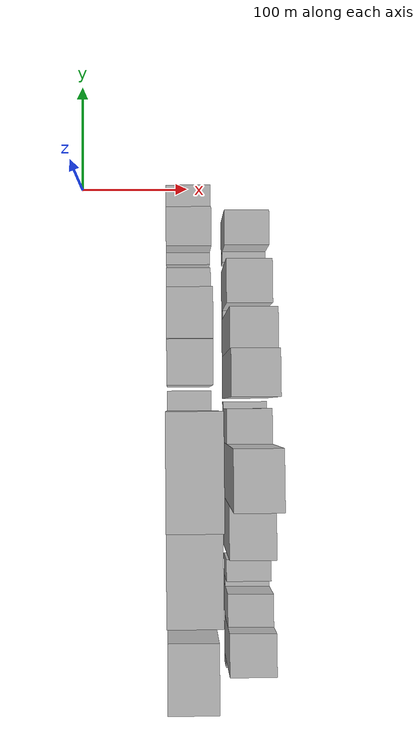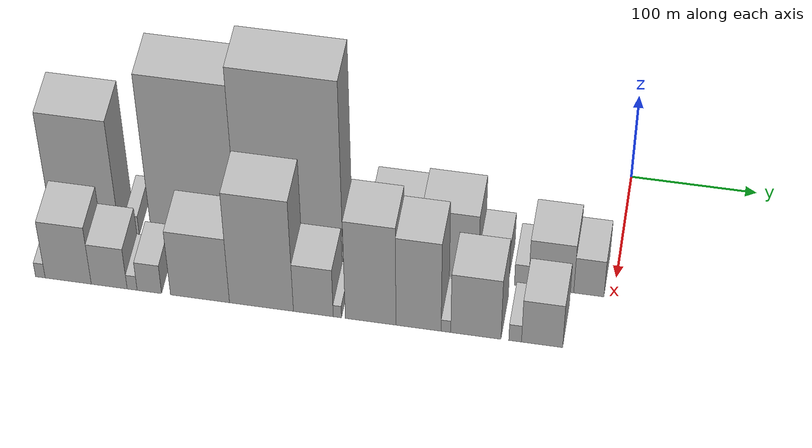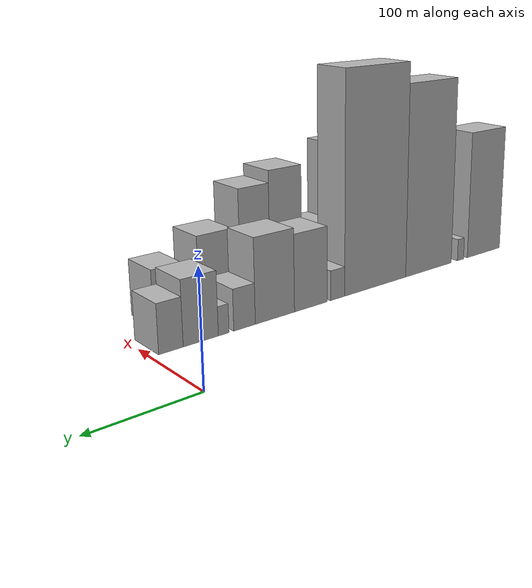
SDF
<sdf version="1.6">
 <world name="default">
  <model name="building_1">
   <static>1</static>
   <pose>100.0000 -416.7734 0 0.000000 0.000000 0.000000</pose>
   <link name="link">
    <pose>0 0 69.00 0 0 0</pose>
    <collision name="collision"><geometry><box><size>40.0000 54.4531 138.0000</size></box></geometry></collision>
    <visual name="visual">
     <cast_shadows>0</cast_shadows>
     <geometry><box><size>40.0000 54.4531 138.0000</size></box></geometry>
     <material>
      <script>
       <uri>model://HANNAS_wall/materials/scripts</uri>
       <uri>model://HANNAS_wall/materials/textures</uri>
       <name>vrc/HANNAS_wall</name>
      </script>
     </material>
    </visual>
   </link>
  </model>
  <model name="building_2">
   <static>1</static>
   <pose>100.0000 -378.5255 0 0.000000 0.000000 0.000000</pose>
   <link name="link">
    <pose>0 0 12.00 0 0 0</pose>
    <collision name="collision"><geometry><box><size>40.0000 10.0428 24.0000</size></box></geometry></collision>
    <visual name="visual">
     <cast_shadows>0</cast_shadows>
     <geometry><box><size>40.0000 10.0428 24.0000</size></box></geometry>
     <material>
      <script>
       <uri>model://HANNAS_wall/materials/scripts</uri>
       <uri>model://HANNAS_wall/materials/textures</uri>
       <name>vrc/HANNAS_wall</name>
      </script>
     </material>
    </visual>
   </link>
  </model>
  <model name="building_3">
   <static>1</static>
   <pose>100.0000 -329.0137 0 0.000000 0.000000 0.000000</pose>
   <link name="link">
    <pose>0 0 99.00 0 0 0</pose>
    <collision name="collision"><geometry><box><size>40.0000 68.9809 198.0000</size></box></geometry></collision>
    <visual name="visual">
     <cast_shadows>0</cast_shadows>
     <geometry><box><size>40.0000 68.9809 198.0000</size></box></geometry>
     <material>
      <script>
       <uri>model://HANNAS_wall/materials/scripts</uri>
       <uri>model://HANNAS_wall/materials/textures</uri>
       <name>vrc/HANNAS_wall</name>
      </script>
     </material>
    </visual>
   </link>
  </model>
  <model name="building_4">
   <static>1</static>
   <pose>100.0000 -252.9540 0 0.000000 0.000000 0.000000</pose>
   <link name="link">
    <pose>0 0 109.50 0 0 0</pose>
    <collision name="collision"><geometry><box><size>40.0000 83.1383 219.0000</size></box></geometry></collision>
    <visual name="visual">
     <cast_shadows>0</cast_shadows>
     <geometry><box><size>40.0000 83.1383 219.0000</size></box></geometry>
     <material>
      <script>
       <uri>model://HANNAS_wall/materials/scripts</uri>
       <uri>model://HANNAS_wall/materials/textures</uri>
       <name>vrc/HANNAS_wall</name>
      </script>
     </material>
    </visual>
   </link>
  </model>
  <model name="building_5">
   <static>1</static>
   <pose>100.0000 -202.4110 0 0.000000 0.000000 0.000000</pose>
   <link name="link">
    <pose>0 0 15.00 0 0 0</pose>
    <collision name="collision"><geometry><box><size>40.0000 17.9478 30.0000</size></box></geometry></collision>
    <visual name="visual">
     <cast_shadows>0</cast_shadows>
     <geometry><box><size>40.0000 17.9478 30.0000</size></box></geometry>
     <material>
      <script>
       <uri>model://HANNAS_wall/materials/scripts</uri>
       <uri>model://HANNAS_wall/materials/textures</uri>
       <name>vrc/HANNAS_wall</name>
      </script>
     </material>
    </visual>
   </link>
  </model>
  <model name="building_6">
   <static>1</static>
   <pose>100.0000 -169.5656 0 0.000000 0.000000 0.000000</pose>
   <link name="link">
    <pose>0 0 37.50 0 0 0</pose>
    <collision name="collision"><geometry><box><size>40.0000 39.7429 75.0000</size></box></geometry></collision>
    <visual name="visual">
     <cast_shadows>0</cast_shadows>
     <geometry><box><size>40.0000 39.7429 75.0000</size></box></geometry>
     <material>
      <script>
       <uri>model://HANNAS_wall/materials/scripts</uri>
       <uri>model://HANNAS_wall/materials/textures</uri>
       <name>vrc/HANNAS_wall</name>
      </script>
     </material>
    </visual>
   </link>
  </model>
  <model name="building_7">
   <static>1</static>
   <pose>100.0000 -127.5140 0 0.000000 0.000000 0.000000</pose>
   <link name="link">
    <pose>0 0 40.50 0 0 0</pose>
    <collision name="collision"><geometry><box><size>40.0000 44.3604 81.0000</size></box></geometry></collision>
    <visual name="visual">
     <cast_shadows>0</cast_shadows>
     <geometry><box><size>40.0000 44.3604 81.0000</size></box></geometry>
     <material>
      <script>
       <uri>model://HANNAS_wall/materials/scripts</uri>
       <uri>model://HANNAS_wall/materials/textures</uri>
       <name>vrc/HANNAS_wall</name>
      </script>
     </material>
    </visual>
   </link>
  </model>
  <model name="building_8">
   <static>1</static>
   <pose>100.0000 -93.7154 0 0.000000 0.000000 0.000000</pose>
   <link name="link">
    <pose>0 0 19.50 0 0 0</pose>
    <collision name="collision"><geometry><box><size>40.0000 23.2367 39.0000</size></box></geometry></collision>
    <visual name="visual">
     <cast_shadows>0</cast_shadows>
     <geometry><box><size>40.0000 23.2367 39.0000</size></box></geometry>
     <material>
      <script>
       <uri>model://HANNAS_wall/materials/scripts</uri>
       <uri>model://HANNAS_wall/materials/textures</uri>
       <name>vrc/HANNAS_wall</name>
      </script>
     </material>
    </visual>
   </link>
  </model>
  <model name="building_9">
   <static>1</static>
   <pose>100.0000 -71.5816 0 0.000000 0.000000 0.000000</pose>
   <link name="link">
    <pose>0 0 13.50 0 0 0</pose>
    <collision name="collision"><geometry><box><size>40.0000 11.0311 27.0000</size></box></geometry></collision>
    <visual name="visual">
     <cast_shadows>0</cast_shadows>
     <geometry><box><size>40.0000 11.0311 27.0000</size></box></geometry>
     <material>
      <script>
       <uri>model://HANNAS_wall/materials/scripts</uri>
       <uri>model://HANNAS_wall/materials/textures</uri>
       <name>vrc/HANNAS_wall</name>
      </script>
     </material>
    </visual>
   </link>
  </model>
  <model name="building_10">
   <static>1</static>
   <pose>100.0000 -48.4964 0 0.000000 0.000000 0.000000</pose>
   <link name="link">
    <pose>0 0 30.00 0 0 0</pose>
    <collision name="collision"><geometry><box><size>40.0000 35.1393 60.0000</size></box></geometry></collision>
    <visual name="visual">
     <cast_shadows>0</cast_shadows>
     <geometry><box><size>40.0000 35.1393 60.0000</size></box></geometry>
     <material>
      <script>
       <uri>model://HANNAS_wall/materials/scripts</uri>
       <uri>model://HANNAS_wall/materials/textures</uri>
       <name>vrc/HANNAS_wall</name>
      </script>
     </material>
    </visual>
   </link>
  </model>
  <model name="building_11">
   <static>1</static>
   <pose>100.0000 -19.2095 0 0.000000 0.000000 0.000000</pose>
   <link name="link">
    <pose>0 0 22.50 0 0 0</pose>
    <collision name="collision"><geometry><box><size>40.0000 23.4344 45.0000</size></box></geometry></collision>
    <visual name="visual">
     <cast_shadows>0</cast_shadows>
     <geometry><box><size>40.0000 23.4344 45.0000</size></box></geometry>
     <material>
      <script>
       <uri>model://HANNAS_wall/materials/scripts</uri>
       <uri>model://HANNAS_wall/materials/textures</uri>
       <name>vrc/HANNAS_wall</name>
      </script>
     </material>
    </visual>
   </link>
  </model>
  <model name="building_25">
   <static>1</static>
   <pose>152.0000 -440.1684 0 0.000000 0.000000 0.000000</pose>
   <link name="link">
    <pose>0 0 9.00 0 0 0</pose>
    <collision name="collision"><geometry><box><size>40.0000 7.6632 18.0000</size></box></geometry></collision>
    <visual name="visual">
     <cast_shadows>0</cast_shadows>
     <geometry><box><size>40.0000 7.6632 18.0000</size></box></geometry>
     <material>
      <script>
       <uri>model://HANNAS_wall/materials/scripts</uri>
       <uri>model://HANNAS_wall/materials/textures</uri>
       <name>vrc/HANNAS_wall</name>
      </script>
     </material>
    </visual>
   </link>
  </model>
  <model name="building_26">
   <static>1</static>
   <pose>152.0000 -418.0549 0 0.000000 0.000000 0.000000</pose>
   <link name="link">
    <pose>0 0 36.00 0 0 0</pose>
    <collision name="collision"><geometry><box><size>40.0000 36.5638 72.0000</size></box></geometry></collision>
    <visual name="visual">
     <cast_shadows>0</cast_shadows>
     <geometry><box><size>40.0000 36.5638 72.0000</size></box></geometry>
     <material>
      <script>
       <uri>model://HANNAS_wall/materials/scripts</uri>
       <uri>model://HANNAS_wall/materials/textures</uri>
       <name>vrc/HANNAS_wall</name>
      </script>
     </material>
    </visual>
   </link>
  </model>
  <model name="building_27">
   <static>1</static>
   <pose>152.0000 -385.5785 0 0.000000 0.000000 0.000000</pose>
   <link name="link">
    <pose>0 0 25.50 0 0 0</pose>
    <collision name="collision"><geometry><box><size>40.0000 28.3890 51.0000</size></box></geometry></collision>
    <visual name="visual">
     <cast_shadows>0</cast_shadows>
     <geometry><box><size>40.0000 28.3890 51.0000</size></box></geometry>
     <material>
      <script>
       <uri>model://HANNAS_wall/materials/scripts</uri>
       <uri>model://HANNAS_wall/materials/textures</uri>
       <name>vrc/HANNAS_wall</name>
      </script>
     </material>
    </visual>
   </link>
  </model>
  <model name="building_28">
   <static>1</static>
   <pose>152.0000 -367.4408 0 0.000000 0.000000 0.000000</pose>
   <link name="link">
    <pose>0 0 9.00 0 0 0</pose>
    <collision name="collision"><geometry><box><size>40.0000 7.8864 18.0000</size></box></geometry></collision>
    <visual name="visual">
     <cast_shadows>0</cast_shadows>
     <geometry><box><size>40.0000 7.8864 18.0000</size></box></geometry>
     <material>
      <script>
       <uri>model://HANNAS_wall/materials/scripts</uri>
       <uri>model://HANNAS_wall/materials/textures</uri>
       <name>vrc/HANNAS_wall</name>
      </script>
     </material>
    </visual>
   </link>
  </model>
  <model name="building_29">
   <static>1</static>
   <pose>152.0000 -353.8533 0 0.000000 0.000000 0.000000</pose>
   <link name="link">
    <pose>0 0 18.00 0 0 0</pose>
    <collision name="collision"><geometry><box><size>40.0000 19.2886 36.0000</size></box></geometry></collision>
    <visual name="visual">
     <cast_shadows>0</cast_shadows>
     <geometry><box><size>40.0000 19.2886 36.0000</size></box></geometry>
     <material>
      <script>
       <uri>model://HANNAS_wall/materials/scripts</uri>
       <uri>model://HANNAS_wall/materials/textures</uri>
       <name>vrc/HANNAS_wall</name>
      </script>
     </material>
    </visual>
   </link>
  </model>
  <model name="building_30">
   <static>1</static>
   <pose>152.0000 -314.0404 0 0.000000 0.000000 0.000000</pose>
   <link name="link">
    <pose>0 0 40.50 0 0 0</pose>
    <collision name="collision"><geometry><box><size>40.0000 46.3372 81.0000</size></box></geometry></collision>
    <visual name="visual">
     <cast_shadows>0</cast_shadows>
     <geometry><box><size>40.0000 46.3372 81.0000</size></box></geometry>
     <material>
      <script>
       <uri>model://HANNAS_wall/materials/scripts</uri>
       <uri>model://HANNAS_wall/materials/textures</uri>
       <name>vrc/HANNAS_wall</name>
      </script>
     </material>
    </visual>
   </link>
  </model>
  <model name="building_31">
   <static>1</static>
   <pose>152.0000 -265.8403 0 0.000000 0.000000 0.000000</pose>
   <link name="link">
    <pose>0 0 69.00 0 0 0</pose>
    <collision name="collision"><geometry><box><size>40.0000 50.0629 138.0000</size></box></geometry></collision>
    <visual name="visual">
     <cast_shadows>0</cast_shadows>
     <geometry><box><size>40.0000 50.0629 138.0000</size></box></geometry>
     <material>
      <script>
       <uri>model://HANNAS_wall/materials/scripts</uri>
       <uri>model://HANNAS_wall/materials/textures</uri>
       <name>vrc/HANNAS_wall</name>
      </script>
     </material>
    </visual>
   </link>
  </model>
  <model name="building_32">
   <static>1</static>
   <pose>152.0000 -225.3065 0 0.000000 0.000000 0.000000</pose>
   <link name="link">
    <pose>0 0 30.00 0 0 0</pose>
    <collision name="collision"><geometry><box><size>40.0000 31.0048 60.0000</size></box></geometry></collision>
    <visual name="visual">
     <cast_shadows>0</cast_shadows>
     <geometry><box><size>40.0000 31.0048 60.0000</size></box></geometry>
     <material>
      <script>
       <uri>model://HANNAS_wall/materials/scripts</uri>
       <uri>model://HANNAS_wall/materials/textures</uri>
       <name>vrc/HANNAS_wall</name>
      </script>
     </material>
    </visual>
   </link>
  </model>
  <model name="building_33">
   <static>1</static>
   <pose>152.0000 -206.5913 0 0.000000 0.000000 0.000000</pose>
   <link name="link">
    <pose>0 0 7.50 0 0 0</pose>
    <collision name="collision"><geometry><box><size>40.0000 6.4255 15.0000</size></box></geometry></collision>
    <visual name="visual">
     <cast_shadows>0</cast_shadows>
     <geometry><box><size>40.0000 6.4255 15.0000</size></box></geometry>
     <material>
      <script>
       <uri>model://HANNAS_wall/materials/scripts</uri>
       <uri>model://HANNAS_wall/materials/textures</uri>
       <name>vrc/HANNAS_wall</name>
      </script>
     </material>
    </visual>
   </link>
  </model>
  <model name="building_34">
   <static>1</static>
   <pose>152.0000 -180.7314 0 0.000000 0.000000 0.000000</pose>
   <link name="link">
    <pose>0 0 61.50 0 0 0</pose>
    <collision name="collision"><geometry><box><size>40.0000 39.2943 123.0000</size></box></geometry></collision>
    <visual name="visual">
     <cast_shadows>0</cast_shadows>
     <geometry><box><size>40.0000 39.2943 123.0000</size></box></geometry>
     <material>
      <script>
       <uri>model://HANNAS_wall/materials/scripts</uri>
       <uri>model://HANNAS_wall/materials/textures</uri>
       <name>vrc/HANNAS_wall</name>
      </script>
     </material>
    </visual>
   </link>
  </model>
  <model name="building_35">
   <static>1</static>
   <pose>152.0000 -143.6471 0 0.000000 0.000000 0.000000</pose>
   <link name="link">
    <pose>0 0 55.50 0 0 0</pose>
    <collision name="collision"><geometry><box><size>40.0000 34.8742 111.0000</size></box></geometry></collision>
    <visual name="visual">
     <cast_shadows>0</cast_shadows>
     <geometry><box><size>40.0000 34.8742 111.0000</size></box></geometry>
     <material>
      <script>
       <uri>model://HANNAS_wall/materials/scripts</uri>
       <uri>model://HANNAS_wall/materials/textures</uri>
       <name>vrc/HANNAS_wall</name>
      </script>
     </material>
    </visual>
   </link>
  </model>
  <model name="building_36">
   <static>1</static>
   <pose>152.0000 -122.4761 0 0.000000 0.000000 0.000000</pose>
   <link name="link">
    <pose>0 0 7.50 0 0 0</pose>
    <collision name="collision"><geometry><box><size>40.0000 7.4679 15.0000</size></box></geometry></collision>
    <visual name="visual">
     <cast_shadows>0</cast_shadows>
     <geometry><box><size>40.0000 7.4679 15.0000</size></box></geometry>
     <material>
      <script>
       <uri>model://HANNAS_wall/materials/scripts</uri>
       <uri>model://HANNAS_wall/materials/textures</uri>
       <name>vrc/HANNAS_wall</name>
      </script>
     </material>
    </visual>
   </link>
  </model>
  <model name="building_37">
   <static>1</static>
   <pose>152.0000 -99.4048 0 0.000000 0.000000 0.000000</pose>
   <link name="link">
    <pose>0 0 37.50 0 0 0</pose>
    <collision name="collision"><geometry><box><size>40.0000 38.6746 75.0000</size></box></geometry></collision>
    <visual name="visual">
     <cast_shadows>0</cast_shadows>
     <geometry><box><size>40.0000 38.6746 75.0000</size></box></geometry>
     <material>
      <script>
       <uri>model://HANNAS_wall/materials/scripts</uri>
       <uri>model://HANNAS_wall/materials/textures</uri>
       <name>vrc/HANNAS_wall</name>
      </script>
     </material>
    </visual>
   </link>
  </model>
  <model name="building_38">
   <static>1</static>
   <pose>152.0000 -69.1788 0 0.000000 0.000000 0.000000</pose>
   <link name="link">
    <pose>0 0 10.50 0 0 0</pose>
    <collision name="collision"><geometry><box><size>40.0000 9.7775 21.0000</size></box></geometry></collision>
    <visual name="visual">
     <cast_shadows>0</cast_shadows>
     <geometry><box><size>40.0000 9.7775 21.0000</size></box></geometry>
     <material>
      <script>
       <uri>model://HANNAS_wall/materials/scripts</uri>
       <uri>model://HANNAS_wall/materials/textures</uri>
       <name>vrc/HANNAS_wall</name>
      </script>
     </material>
    </visual>
   </link>
  </model>
  <model name="building_39">
   <static>1</static>
   <pose>152.0000 -48.5217 0 0.000000 0.000000 0.000000</pose>
   <link name="link">
    <pose>0 0 27.00 0 0 0</pose>
    <collision name="collision"><geometry><box><size>40.0000 31.5368 54.0000</size></box></geometry></collision>
    <visual name="visual">
     <cast_shadows>0</cast_shadows>
     <geometry><box><size>40.0000 31.5368 54.0000</size></box></geometry>
     <material>
      <script>
       <uri>model://HANNAS_wall/materials/scripts</uri>
       <uri>model://HANNAS_wall/materials/textures</uri>
       <name>vrc/HANNAS_wall</name>
      </script>
     </material>
    </visual>
   </link>
  </model>
 </world>
</sdf>
